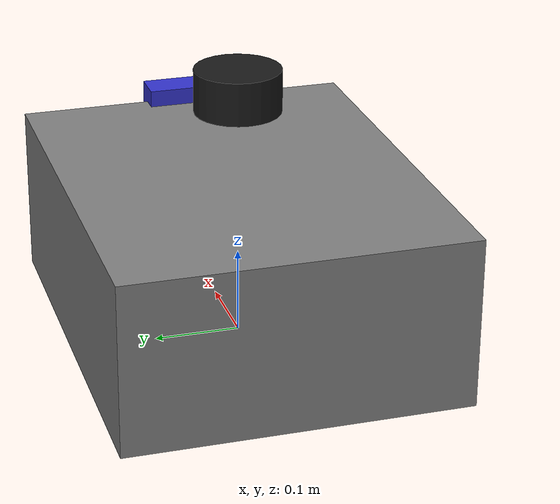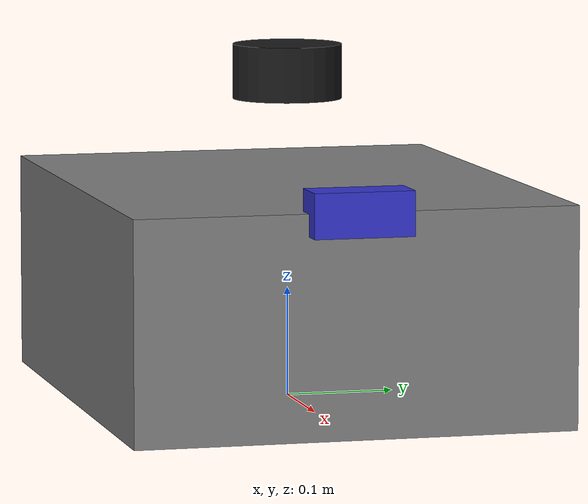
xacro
<?xml version="1.0"?>
<robot name="robot" xmlns:xacro="http://www.ros.org/wiki/xacro">

  <!-- base_footprint: projection of the robot center onto the floor -->
  <link name="base_footprint"/>

  <joint name="base_footprint_joint" type="fixed">
    <parent link="base_footprint"/>
    <child link="base_link"/>
    <!-- chassis center is 0.1 m above the floor -->
    <origin xyz="0 0 0.1" rpy="0 0 0"/>
  </joint>

  <!-- base_link: main chassis body (0.5 x 0.4 x 0.2 m box) -->
  <link name="base_link">
    <visual>
      <geometry>
        <box size="0.5 0.4 0.2"/>
      </geometry>
      <material name="gray">
        <color rgba="0.5 0.5 0.5 1.0"/>
      </material>
    </visual>
    <collision>
      <geometry>
        <box size="0.5 0.4 0.2"/>
      </geometry>
    </collision>
    <inertial>
      <mass value="10.0"/>
      <inertia ixx="0.1" ixy="0" ixz="0" iyy="0.1" iyz="0" izz="0.1"/>
    </inertial>
  </link>

  <!-- lidar_link: 2-D LiDAR mounted on top of chassis -->
  <joint name="lidar_joint" type="fixed">
    <parent link="base_link"/>
    <child link="lidar_link"/>
    <origin xyz="0 0 0.2" rpy="0 0 0"/>
  </joint>

  <link name="lidar_link">
    <visual>
      <geometry>
        <cylinder radius="0.05" length="0.05"/>
      </geometry>
      <material name="black">
        <color rgba="0.1 0.1 0.1 1.0"/>
      </material>
    </visual>
    <collision>
      <geometry>
        <cylinder radius="0.05" length="0.05"/>
      </geometry>
    </collision>
  </link>

  <!-- camera_link: depth camera at the front of the chassis -->
  <joint name="camera_joint" type="fixed">
    <parent link="base_link"/>
    <child link="camera_link"/>
    <origin xyz="0.25 0 0.1" rpy="0 0 0"/>
  </joint>

  <link name="camera_link">
    <visual>
      <geometry>
        <box size="0.04 0.09 0.04"/>
      </geometry>
      <material name="blue">
        <color rgba="0.2 0.2 0.8 1.0"/>
      </material>
    </visual>
  </link>

</robot>
